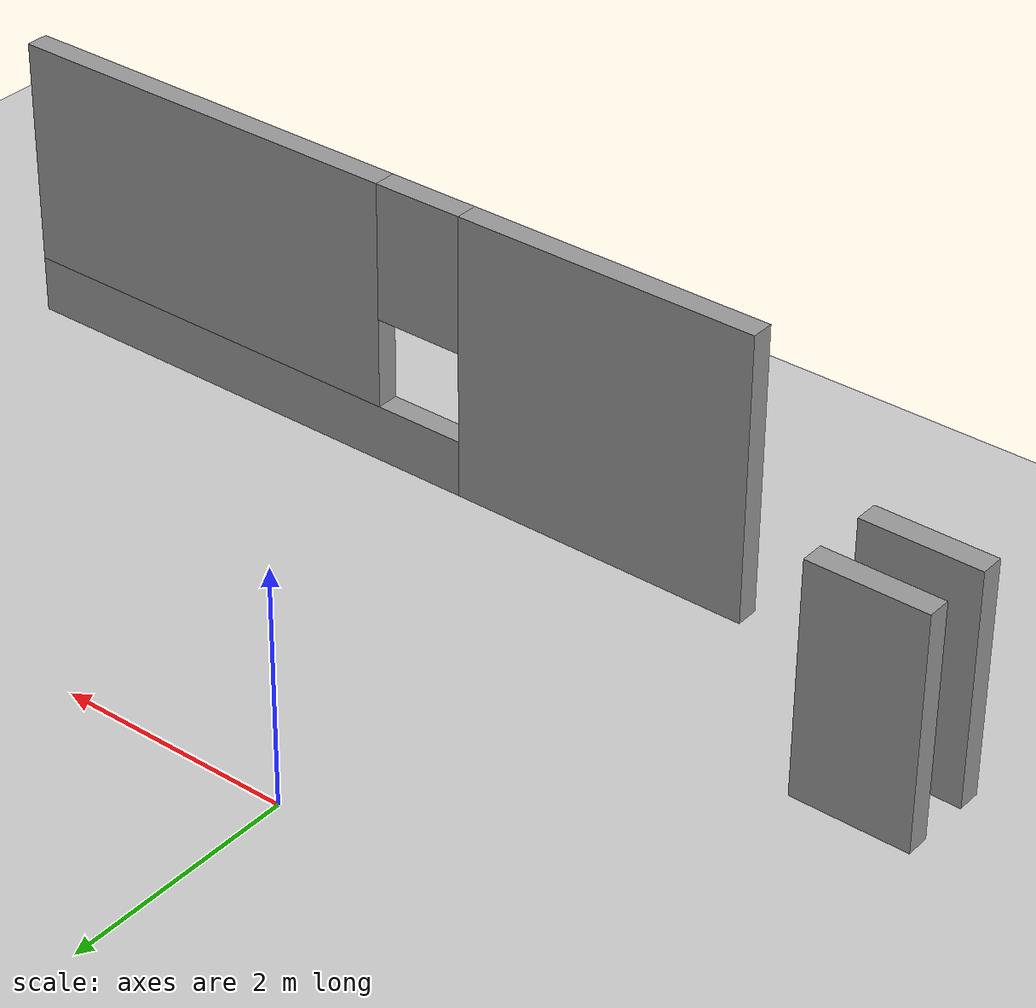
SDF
<sdf version="1.4">
 <world name="default">
  <light name="sun" type="directional">
   <pose>0 0 10 0 -0 0</pose>
   <diffuse>0.8 0.8 0.8 1</diffuse>
   <specular>0.2 0.2 0.2 1</specular>
   <attenuation>
    <range>1000</range>
    <constant>0.9</constant>
    <linear>0.01</linear>
    <quadratic>0.001</quadratic>
   </attenuation>
   <direction>-0.5 0.1 -0.9</direction>
  </light>
  <model name="ground_plane">
   <static>1</static>
   <link name="link">
    <collision name="collision">
     <geometry><plane><normal>0 0 1</normal><size>100 100</size></plane></geometry>
     <surface><friction><ode><mu>100</mu><mu2>50</mu2></ode></friction></surface>
    </collision>
    <visual name="visual">
     <cast_shadows>0</cast_shadows>
     <geometry><plane><normal>0 0 1</normal><size>100 100</size></plane></geometry>
     <material>
      <script><uri>file://media/materials/scripts/gazebo.material</uri><name>Gazebo/Grey</name></script>
     </material>
    </visual>
    <velocity_decay><linear>0</linear><angular>0</angular></velocity_decay>
   </link>
  </model>
  <physics type="ode">
   <max_step_size>0.01</max_step_size>
   <real_time_factor>1</real_time_factor>
   <real_time_update_rate>100</real_time_update_rate>
   <gravity>0 0 -9.8</gravity>
  </physics>
  <scene><ambient>0.4 0.4 0.4 1</ambient><background>0.7 0.7 0.7 1</background><shadows>1</shadows></scene>
  <model name="wall1_window1">
   <link name="Door_0">
    <collision name="Door_0_Collision">
     <geometry><box><size>1 0.2 2</size></box></geometry>
     <pose>0 0 1 0 -0 0</pose>
    </collision>
    <visual name="Door_0_Visual">
     <pose>0 0 1 0 -0 0</pose>
     <geometry><box><size>1 0.2 2</size></box></geometry>
     <material>
      <script><uri>file://media/materials/scripts/gazebo.material</uri><name>Gazebo/Grey</name></script>
     </material>
    </visual>
    <velocity_decay><linear>0</linear><angular>0</angular></velocity_decay>
    <pose>-6.17 -0.85 0 0 -0 0</pose>
   </link>
   <link name="Door_1">
    <collision name="Door_1_Collision">
     <geometry><box><size>1 0.2 2</size></box></geometry>
     <pose>0 0 1 0 -0 0</pose>
    </collision>
    <visual name="Door_1_Visual">
     <pose>0 0 1 0 -0 0</pose>
     <geometry><box><size>1 0.2 2</size></box></geometry>
     <material>
      <script><uri>file://media/materials/scripts/gazebo.material</uri><name>Gazebo/Grey</name></script>
     </material>
    </visual>
    <velocity_decay><linear>0</linear><angular>0</angular></velocity_decay>
    <pose>-6.18 -1.48 0 0 -0 0</pose>
   </link>
   <link name="Wall_0">
    <pose>-0.645 -2.28 0 0 -0 0</pose>
    <visual name="Wall_0_Visual_0">
     <pose>-2.25 0 1.25 0 -0 0</pose>
     <geometry><box><size>2.69 0.2 2.5</size></box></geometry>
     <material>
      <script><uri>file://media/materials/scripts/gazebo.material</uri><name>Gazebo/Grey</name></script>
     </material>
    </visual>
    <collision name="Wall_0_Collision_0">
     <geometry><box><size>2.69 0.2 2.5</size></box></geometry>
     <pose>-2.25 0 1.25 0 -0 0</pose>
    </collision>
    <visual name="Wall_0_Visual_1">
     <pose>1.345 0 0.25 0 -0 0</pose>
     <geometry><box><size>4.5 0.2 0.5</size></box></geometry>
     <material>
      <script><uri>file://media/materials/scripts/gazebo.material</uri><name>Gazebo/Grey</name></script>
     </material>
    </visual>
    <collision name="Wall_0_Collision_1">
     <geometry><box><size>4.5 0.2 0.5</size></box></geometry>
     <pose>1.345 0 0.25 0 -0 0</pose>
    </collision>
    <visual name="Wall_0_Visual_2">
     <pose>1.745 0 1.5 0 -0 0</pose>
     <geometry><box><size>3.7 0.2 2</size></box></geometry>
     <material>
      <script><uri>file://media/materials/scripts/gazebo.material</uri><name>Gazebo/Grey</name></script>
     </material>
    </visual>
    <collision name="Wall_0_Collision_2">
     <geometry><box><size>3.7 0.2 2</size></box></geometry>
     <pose>1.745 0 1.5 0 -0 0</pose>
    </collision>
    <visual name="Wall_0_Visual_3">
     <pose>-0.505 0 1.9 0 -0 0</pose>
     <geometry><box><size>0.8 0.2 1.2</size></box></geometry>
     <material>
      <script><uri>file://media/materials/scripts/gazebo.material</uri><name>Gazebo/Grey</name></script>
     </material>
    </visual>
    <collision name="Wall_0_Collision_3">
     <geometry><box><size>0.8 0.2 1.2</size></box></geometry>
     <pose>-0.505 0 1.9 0 -0 0</pose>
    </collision>
    <velocity_decay><linear>0</linear><angular>0</angular></velocity_decay>
   </link>
   <static>1</static>
   <pose>3 -1.55836 0 0 -0 0</pose>
  </model>
 </world>
</sdf>
